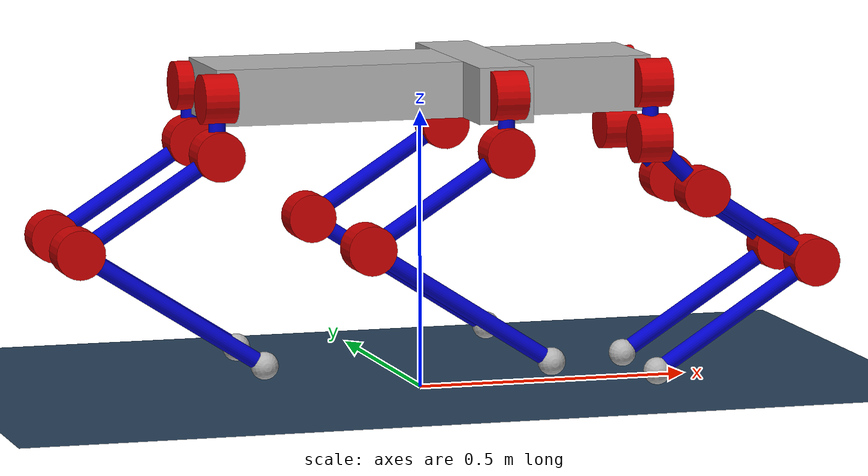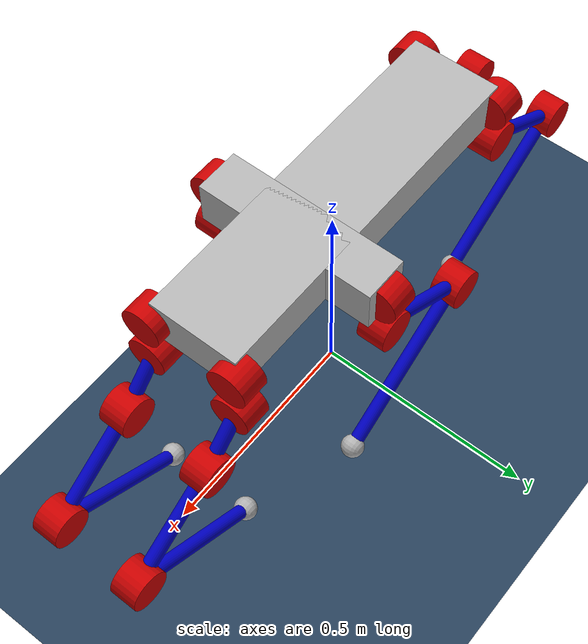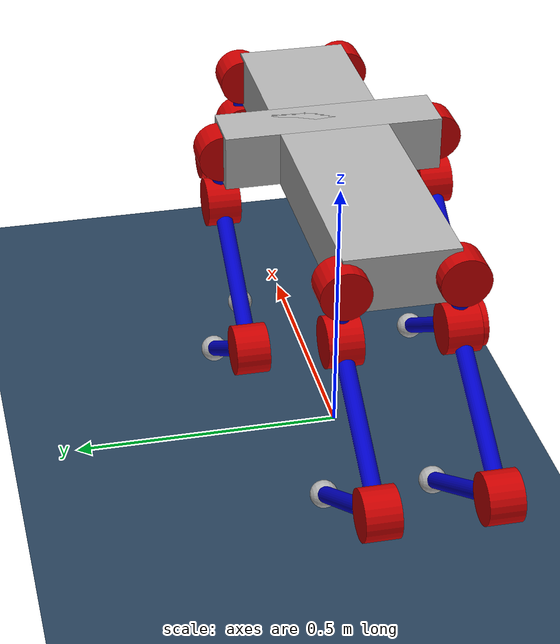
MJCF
<mujoco model="newhex1 scene">
  <include file="newhex1.xml" />
  <default>
    <default class="floor">
      <geom type="plane" size="0 0 0.05" material="groundplane" />
    </default>
  </default>
  <visual>
    <global offwidth="3840" offheight="2160" />
    <rgba haze="0.15 0.25 0.35 1" />
  </visual>
  <asset>
    <texture type="2d" name="groundplane" builtin="checker" mark="edge" rgb1="0.2 0.3 0.4" rgb2="0.1 0.2 0.3" markrgb="0.8 0.8 0.8" width="300" height="300" />
    <material name="groundplane" texture="groundplane" texuniform="true" texrepeat="5 5" reflectance="0.2" />
  </asset>
  <worldbody>
    <light pos="0 0 1.5" dir="0 0 -1" directional="true" />
    <geom name="floor" class="floor" size="0 0 0.05" />
  </worldbody>
  <keyframe>
    <key name="home" qpos="0 0 0.66 1 0 0 0 0 0.17 0.3 0.41 0.06 0.12 -0.46 0.06 0.12 -0.44 -0.05 -0.14 -0.3 -0.46 -0.08 -0.12 0.42 -0.05 -0.12 0.41" ctrl="0 0.17 0.3 0.41 0.06 0.12 -0.46 0.06 0.12 -0.44 -0.05 -0.14 -0.3 -0.46 -0.08 -0.12 0.42 -0.05 -0.12 0.41" />
  </keyframe>
</mujoco>

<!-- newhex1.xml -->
<mujoco model="hexapod_robot_BASIC">
  <default>
    <default class="robot">
      <joint damping="2" armature="0.01" frictionloss="0.2" />
      <default class="visual">
        <geom contype="0" conaffinity="0" group="2" />
      </default>
      <default class="collision">
        <geom contype="0" conaffinity="1" group="3" />
      </default>
    </default>
  </default>
  <compiler angle="radian" meshdir="assets" balanceinertia="true" />
  <worldbody>
    <body name="base_link" childclass="robot" pos="0 0 0.5491">
      <inertial pos="0 0 0" mass="1.32" quat="1 0 0 0" diaginertia="0.0166667 0.0166667 0.0166667" />
      <geom name="base_link_collision_0" type="box" size="0.4 0.1 0.05" class="collision" />
      <geom name="base_link_collision_1" pos="0.1 0 0" type="box" size="0.05 0.2 0.05" class="collision" />
      <geom name="base_link_visual_0" type="box" size="0.4 0.1 0.05" material="grey" class="visual" />
      <geom name="base_link_visual_1" pos="0.1 0 0" type="box" size="0.05 0.2 0.05" material="grey" class="visual" />
      <site name="imu" pos="0 0 0" size="0.01" rgba="1 0 0 1" />
      <body name="LF_link1" pos="0.4 0.1 0" quat="0.7071 0 0.7071 0">
        <inertial pos="0 0 0" quat="1 0 0 0" mass="0.4" diaginertia="0.000968 0.000968 0.000784" />
        <joint name="LF_joint1" type="hinge" range="-6.28 6.28" axis="0 0 1" />
        <geom name="LF_link1_collision" pos="0.05 0 0" quat="0.7071 0 0.7071 0" type="cylinder" size="0.015 0.05" class="collision" />
        <geom name="LF_link1_visual_0" type="cylinder" size="0.044 0.03" material="red" class="visual" />
        <geom name="LF_link1_visual_1" pos="0.05 0 0" quat="0.7071 0 0.7071 0" type="cylinder" size="0.015 0.05" material="blue" class="visual" />
        <body name="LF_link2" pos="0.1 0 0">
          <inertial pos="0 0 0" quat="1 0 0 0" mass="0.441421" diaginertia="0.000968 0.000968 0.000784" />
          <joint name="LF_joint2" type="hinge" range="-6.28 6.28" axis="0 0 1" />
          <geom name="LF_link2_collision" pos="0.05 0 0.05" quat="0.9239 0 0.3827 0" type="cylinder" size="0.015 0.0707105" class="collision" />
          <geom name="LF_link2_visual_0" type="cylinder" size="0.044 0.03" material="red" class="visual" />
          <geom name="LF_link2_visual_1" pos="0.05 0 0.05" quat="0.9239 0 0.3827 0" type="cylinder" size="0.015 0.0707105" material="blue" class="visual" />
          <body name="LF_link3" pos="0.1 0 0.1" quat="0.6205 0.6205 -0.339 0.339">
            <inertial pos="0 0 0" quat="1 0 0 0" mass="0.55" diaginertia="0.000968 0.000968 0.000784" />
            <joint name="LF_joint3" type="hinge" range="-6.28 6.28" axis="0 0 1" />
            <geom name="LF_link3_collision" pos="0.125 0 0" quat="0.7071 0 0.7071 0" type="cylinder" size="0.015 0.125" class="collision" />
            <geom name="LF_link3_visual_0" type="cylinder" size="0.044 0.03" material="red" class="visual" />
            <geom name="LF_link3_visual_1" pos="0.125 0 0" quat="0.7071 0 0.7071 0" type="cylinder" size="0.015 0.125" material="blue" class="visual" />
            <body name="LF_link4" pos="0.25 0 0" quat="0.5403 0 0 -0.8415">
              <inertial pos="0 0 0" quat="1 0 0 0" mass="0.65" diaginertia="0.000968 0.000968 0.000784" />
              <joint name="LF_joint4" type="hinge" range="-6.28 6.28" axis="0 0 1" />
              <geom name="LF_link4_collision" pos="0.175 0 0" quat="0.7071 0 0.7071 0" type="cylinder" size="0.015 0.175" class="collision" />
              <geom name="LF_link4_visual_0" type="cylinder" size="0.044 0.03" material="red" class="visual" />
              <geom name="LF_link4_visual_1" pos="0.175 0 0" quat="0.7071 0 0.7071 0" type="cylinder" size="0.015 0.175" material="blue" class="visual" />
              <body name="LF_foot_link" pos="0.35 0 0">
                <inertial pos="0 0 0" quat="1 0 0 0" mass="0.05" diaginertia="1.25e-05 1.25e-05 1.25e-05" />
                <geom name="LF_foot_link_collision" type="sphere" size="0.025" class="collision" />
                <geom name="LF_foot_link_visual" type="sphere" size="0.025" material="grey" class="visual" />
                <site name="LF_touch_site" size="0.01" rgba="0 0 0 0" />
              </body>
            </body>
          </body>
        </body>
      </body>
      <body name="LM_link1" pos="0.1 0.2 0" quat="0.7071 0 0.7071 0">
        <inertial pos="0 0 0" quat="1 0 0 0" mass="0.4" diaginertia="0.000968 0.000968 0.000784" />
        <joint name="LM_joint1" type="hinge" range="-6.28 6.28" axis="0 0 1" />
        <geom name="LM_link1_collision" pos="0.05 0 0" quat="0.7071 0 0.7071 0" type="cylinder" size="0.015 0.05" class="collision" />
        <geom name="LM_link1_visual_0" type="cylinder" size="0.044 0.03" material="red" class="visual" />
        <geom name="LM_link1_visual_1" pos="0.05 0 0" quat="0.7071 0 0.7071 0" type="cylinder" size="0.015 0.05" material="blue" class="visual" />
        <body name="LM_link2" pos="0.1 0 0" quat="0.6205 0.6205 0.339 -0.339">
          <inertial pos="0 0 0" quat="1 0 0 0" mass="0.6" diaginertia="0.000968 0.000968 0.000784" />
          <joint name="LM_joint2" type="hinge" range="-6.28 6.28" axis="0 0 1" />
          <geom name="LM_link2_collision" pos="0.15 0 0" quat="0.7071 0 0.7071 0" type="cylinder" size="0.015 0.15" class="collision" />
          <geom name="LM_link2_visual_0" type="cylinder" size="0.044 0.03" material="red" class="visual" />
          <geom name="LM_link2_visual_1" pos="0.15 0 0" quat="0.7071 0 0.7071 0" type="cylinder" size="0.015 0.15" material="blue" class="visual" />
          <body name="LM_link3" pos="0.3 0 0" quat="0.5403 0 0 0.8415">
            <inertial pos="0 0 0" quat="1 0 0 0" mass="0.7" diaginertia="0.000968 0.000968 0.000784" />
            <joint name="LM_joint3" type="hinge" range="-6.28 6.28" axis="0 0 1" />
            <geom name="LM_link3_collision" pos="0.2 0 0" quat="0.7071 0 0.7071 0" type="cylinder" size="0.015 0.2" class="collision" />
            <geom name="LM_link3_visual_0" type="cylinder" size="0.044 0.03" material="red" class="visual" />
            <geom name="LM_link3_visual_1" pos="0.2 0 0" quat="0.7071 0 0.7071 0" type="cylinder" size="0.015 0.2" material="blue" class="visual" />
            <body name="LM_foot_link" pos="0.4 0 0">
              <inertial pos="0 0 0" quat="1 0 0 0" mass="0.05" diaginertia="1.25e-05 1.25e-05 1.25e-05" />
              <geom name="LM_foot_link_collision" type="sphere" size="0.025" class="collision" />
              <geom name="LM_foot_link_visual" type="sphere" size="0.025" material="grey" class="visual" />
              <site name="LM_touch_site" size="0.01" rgba="0 0 0 0" />
            </body>
          </body>
        </body>
      </body>
      <body name="LB_link1" pos="-0.4 0.1 0" quat="0.7071 0 0.7071 0">
        <inertial pos="0 0 0" quat="1 0 0 0" mass="0.4" diaginertia="0.000968 0.000968 0.000784" />
        <joint name="LB_joint1" type="hinge" range="-6.28 6.28" axis="0 0 1" />
        <geom name="LB_link1_collision" pos="0.05 0 0" quat="0.7071 0 0.7071 0" type="cylinder" size="0.015 0.05" class="collision" />
        <geom name="LB_link1_visual_0" type="cylinder" size="0.044 0.03" material="red" class="visual" />
        <geom name="LB_link1_visual_1" pos="0.05 0 0" quat="0.7071 0 0.7071 0" type="cylinder" size="0.015 0.05" material="blue" class="visual" />
        <body name="LB_link2" pos="0.1 0 0" quat="0.6205 0.6205 0.339 -0.339">
          <inertial pos="0 0 0" quat="1 0 0 0" mass="0.6" diaginertia="0.000968 0.000968 0.000784" />
          <joint name="LB_joint2" type="hinge" range="-6.28 6.28" axis="0 0 1" />
          <geom name="LB_link2_collision" pos="0.15 0 0" quat="0.7071 0 0.7071 0" type="cylinder" size="0.015 0.15" class="collision" />
          <geom name="LB_link2_visual_0" type="cylinder" size="0.044 0.03" material="red" class="visual" />
          <geom name="LB_link2_visual_1" pos="0.15 0 0" quat="0.7071 0 0.7071 0" type="cylinder" size="0.015 0.15" material="blue" class="visual" />
          <body name="LB_link3" pos="0.3 0 0" quat="0.5403 0 0 0.8415">
            <inertial pos="0 0 0" quat="1 0 0 0" mass="0.7" diaginertia="0.000968 0.000968 0.000784" />
            <joint name="LB_joint3" type="hinge" range="-6.28 6.28" axis="0 0 1" />
            <geom name="LB_link3_collision" pos="0.2 0 0" quat="0.7071 0 0.7071 0" type="cylinder" size="0.015 0.2" class="collision" />
            <geom name="LB_link3_visual_0" type="cylinder" size="0.044 0.03" material="red" class="visual" />
            <geom name="LB_link3_visual_1" pos="0.2 0 0" quat="0.7071 0 0.7071 0" type="cylinder" size="0.015 0.2" material="blue" class="visual" />
            <body name="LB_foot_link" pos="0.4 0 0">
              <inertial pos="0 0 0" quat="1 0 0 0" mass="0.05" diaginertia="1.25e-05 1.25e-05 1.25e-05" />
              <geom name="LB_foot_link_collision" type="sphere" size="0.025" class="collision" />
              <geom name="LB_foot_link_visual" type="sphere" size="0.025" material="grey" class="visual" />
              <site name="LB_touch_site" size="0.01" rgba="0 0 0 0" />
            </body>
          </body>
        </body>
      </body>
      <body name="RF_link1" pos="0.4 -0.1 0" quat="0.7071 0 0.7071 0">
        <inertial pos="0 0 0" quat="1 0 0 0" mass="0.4" diaginertia="0.000968 0.000968 0.000784" />
        <joint name="RF_joint1" type="hinge" range="-6.28 6.28" axis="0 0 1" />
        <geom name="RF_link1_collision" pos="0.05 -0 0" quat="0.7071 0 0.7071 0" type="cylinder" size="0.015 0.05" class="collision" />
        <geom name="RF_link1_visual_0" type="cylinder" size="0.044 0.03" material="red" class="visual" />
        <geom name="RF_link1_visual_1" pos="0.05 -0 0" quat="0.7071 0 0.7071 0" type="cylinder" size="0.015 0.05" material="blue" class="visual" />
        <body name="RF_link2" pos="0.1 -0 0">
          <inertial pos="0 0 0" quat="1 0 0 0" mass="0.441421" diaginertia="0.000968 0.000968 0.000784" />
          <joint name="RF_joint2" type="hinge" range="-6.28 6.28" axis="0 0 1" />
          <geom name="RF_link2_collision" pos="0.05 -0 0.05" quat="0.9239 0 0.3827 0" type="cylinder" size="0.015 0.0707105" class="collision" />
          <geom name="RF_link2_visual_0" type="cylinder" size="0.044 0.03" material="red" class="visual" />
          <geom name="RF_link2_visual_1" pos="0.05 -0 0.05" quat="0.9239 0 0.3827 0" type="cylinder" size="0.015 0.0707105" material="blue" class="visual" />
          <body name="RF_link3" pos="0.1 -0 0.1" quat="0.6205 -0.6205 -0.339 -0.339">
            <inertial pos="0 0 0" quat="1 0 0 0" mass="0.55" diaginertia="0.000968 0.000968 0.000784" />
            <joint name="RF_joint3" type="hinge" range="-6.28 6.28" axis="0 0 1" />
            <geom name="RF_link3_collision" pos="0.125 -0 0" quat="0.7071 0 0.7071 0" type="cylinder" size="0.015 0.125" class="collision" />
            <geom name="RF_link3_visual_0" type="cylinder" size="0.044 0.03" material="red" class="visual" />
            <geom name="RF_link3_visual_1" pos="0.125 -0 0" quat="0.7071 0 0.7071 0" type="cylinder" size="0.015 0.125" material="blue" class="visual" />
            <body name="RF_link4" pos="0.25 -0 0" quat="0.5403 0 0 0.8415">
              <inertial pos="0 0 0" quat="1 0 0 0" mass="0.65" diaginertia="0.000968 0.000968 0.000784" />
              <joint name="RF_joint4" type="hinge" range="-6.28 6.28" axis="0 0 1" />
              <geom name="RF_link4_collision" pos="0.175 -0 0" quat="0.7071 0 0.7071 0" type="cylinder" size="0.015 0.175" class="collision" />
              <geom name="RF_link4_visual_0" type="cylinder" size="0.044 0.03" material="red" class="visual" />
              <geom name="RF_link4_visual_1" pos="0.175 -0 0" quat="0.7071 0 0.7071 0" type="cylinder" size="0.015 0.175" material="blue" class="visual" />
              <body name="RF_foot_link" pos="0.35 -0 0">
                <inertial pos="0 0 0" quat="1 0 0 0" mass="0.05" diaginertia="1.25e-05 1.25e-05 1.25e-05" />
                <geom name="RF_foot_link_collision" type="sphere" size="0.025" class="collision" />
                <geom name="RF_foot_link_visual" type="sphere" size="0.025" material="grey" class="visual" />
                <site name="RF_touch_site" size="0.01" rgba="0 0 0 0" />
              </body>
            </body>
          </body>
        </body>
      </body>
      <body name="RM_link1" pos="0.1 -0.2 0" quat="0.7071 0 0.7071 0">
        <inertial pos="0 0 0" quat="1 0 0 0" mass="0.4" diaginertia="0.000968 0.000968 0.000784" />
        <joint name="RM_joint1" type="hinge" range="-6.28 6.28" axis="0 0 1" />
        <geom name="RM_link1_collision" pos="0.05 -0 0" quat="0.7071 0 0.7071 0" type="cylinder" size="0.015 0.05" class="collision" />
        <geom name="RM_link1_visual_0" type="cylinder" size="0.044 0.03" material="red" class="visual" />
        <geom name="RM_link1_visual_1" pos="0.05 -0 0" quat="0.7071 0 0.7071 0" type="cylinder" size="0.015 0.05" material="blue" class="visual" />
        <body name="RM_link2" pos="0.1 -0 0" quat="0.6205 -0.6205 0.339 0.339">
          <inertial pos="0 0 0" quat="1 0 0 0" mass="0.6" diaginertia="0.000968 0.000968 0.000784" />
          <joint name="RM_joint2" type="hinge" range="-6.28 6.28" axis="0 0 1" />
          <geom name="RM_link2_collision" pos="0.15 -0 0" quat="0.7071 0 0.7071 0" type="cylinder" size="0.015 0.15" class="collision" />
          <geom name="RM_link2_visual_0" type="cylinder" size="0.044 0.03" material="red" class="visual" />
          <geom name="RM_link2_visual_1" pos="0.15 -0 0" quat="0.7071 0 0.7071 0" type="cylinder" size="0.015 0.15" material="blue" class="visual" />
          <body name="RM_link3" pos="0.3 -0 0" quat="0.5403 0 0 -0.8415">
            <inertial pos="0 0 0" quat="1 0 0 0" mass="0.7" diaginertia="0.000968 0.000968 0.000784" />
            <joint name="RM_joint3" type="hinge" range="-6.28 6.28" axis="0 0 1" />
            <geom name="RM_link3_collision" pos="0.2 -0 0" quat="0.7071 0 0.7071 0" type="cylinder" size="0.015 0.2" class="collision" />
            <geom name="RM_link3_visual_0" type="cylinder" size="0.044 0.03" material="red" class="visual" />
            <geom name="RM_link3_visual_1" pos="0.2 -0 0" quat="0.7071 0 0.7071 0" type="cylinder" size="0.015 0.2" material="blue" class="visual" />
            <body name="RM_foot_link" pos="0.4 -0 0">
              <inertial pos="0 0 0" quat="1 0 0 0" mass="0.05" diaginertia="1.25e-05 1.25e-05 1.25e-05" />
              <geom name="RM_foot_link_collision" type="sphere" size="0.025" class="collision" />
              <geom name="RM_foot_link_visual" type="sphere" size="0.025" material="grey" class="visual" />
              <site name="RM_touch_site" size="0.01" rgba="0 0 0 0" />
            </body>
          </body>
        </body>
      </body>
      <body name="RB_link1" pos="-0.4 -0.1 0" quat="0.7071 0 0.7071 0">
        <inertial pos="0 0 0" quat="1 0 0 0" mass="0.4" diaginertia="0.000968 0.000968 0.000784" />
        <joint name="RB_joint1" type="hinge" range="-6.28 6.28" axis="0 0 1" />
        <geom name="RB_link1_collision" pos="0.05 -0 0" quat="0.7071 0 0.7071 0" type="cylinder" size="0.015 0.05" class="collision" />
        <geom name="RB_link1_visual_0" type="cylinder" size="0.044 0.03" material="red" class="visual" />
        <geom name="RB_link1_visual_1" pos="0.05 -0 0" quat="0.7071 0 0.7071 0" type="cylinder" size="0.015 0.05" material="blue" class="visual" />
        <body name="RB_link2" pos="0.1 -0 0" quat="0.6205 -0.6205 0.339 0.339">
          <inertial pos="0 0 0" quat="1 0 0 0" mass="0.6" diaginertia="0.000968 0.000968 0.000784" />
          <joint name="RB_joint2" type="hinge" range="-6.28 6.28" axis="0 0 1" />
          <geom name="RB_link2_collision" pos="0.15 -0 0" quat="0.7071 0 0.7071 0" type="cylinder" size="0.015 0.15" class="collision" />
          <geom name="RB_link2_visual_0" type="cylinder" size="0.044 0.03" material="red" class="visual" />
          <geom name="RB_link2_visual_1" pos="0.15 -0 0" quat="0.7071 0 0.7071 0" type="cylinder" size="0.015 0.15" material="blue" class="visual" />
          <body name="RB_link3" pos="0.3 -0 0" quat="0.5403 0 0 -0.8415">
            <inertial pos="0 0 0" quat="1 0 0 0" mass="0.7" diaginertia="0.000968 0.000968 0.000784" />
            <joint name="RB_joint3" type="hinge" range="-6.28 6.28" axis="0 0 1" />
            <geom name="RB_link3_collision" pos="0.2 -0 0" quat="0.7071 0 0.7071 0" type="cylinder" size="0.015 0.2" class="collision" />
            <geom name="RB_link3_visual_0" type="cylinder" size="0.044 0.03" material="red" class="visual" />
            <geom name="RB_link3_visual_1" pos="0.2 -0 0" quat="0.7071 0 0.7071 0" type="cylinder" size="0.015 0.2" material="blue" class="visual" />
            <body name="RB_foot_link" pos="0.4 -0 0">
              <inertial pos="0 0 0" quat="1 0 0 0" mass="0.05" diaginertia="1.25e-05 1.25e-05 1.25e-05" />
              <geom name="RB_foot_link_collision" type="sphere" size="0.025" class="collision" />
              <geom name="RB_foot_link_visual" type="sphere" size="0.025" material="grey" class="visual" />
              <site name="RB_touch_site" size="0.01" rgba="0 0 0 0" />
            </body>
          </body>
        </body>
      </body>
      <freejoint name="floating_base" />
    </body>
  </worldbody>
  <asset>
    <material name="blue" rgba="0 0 0.8 1" />
    <material name="red" rgba="0.8 0 0 1" />
    <material name="grey" rgba="0.7 0.7 0.7 1" />
  </asset>
  <actuator>
    <position name="LF_joint1" joint="LF_joint1" />
    <position name="LF_joint2" joint="LF_joint2" />
    <position name="LF_joint3" joint="LF_joint3" />
    <position name="LF_joint4" joint="LF_joint4" />
    <position name="LM_joint1" joint="LM_joint1" />
    <position name="LM_joint2" joint="LM_joint2" />
    <position name="LM_joint3" joint="LM_joint3" />
    <position name="LB_joint1" joint="LB_joint1" />
    <position name="LB_joint2" joint="LB_joint2" />
    <position name="LB_joint3" joint="LB_joint3" />
    <position name="RF_joint1" joint="RF_joint1" />
    <position name="RF_joint2" joint="RF_joint2" />
    <position name="RF_joint3" joint="RF_joint3" />
    <position name="RF_joint4" joint="RF_joint4" />
    <position name="RM_joint1" joint="RM_joint1" />
    <position name="RM_joint2" joint="RM_joint2" />
    <position name="RM_joint3" joint="RM_joint3" />
    <position name="RB_joint1" joint="RB_joint1" />
    <position name="RB_joint2" joint="RB_joint2" />
    <position name="RB_joint3" joint="RB_joint3" />
  </actuator>
  <sensor>
    <gyro site="imu" name="gyro" />
    <velocimeter site="imu" name="local_linvel" />
    <framepos objtype="site" objname="imu" name="position" />
    <framezaxis objtype="site" objname="imu" name="upvector" />
    <framelinvel objtype="site" objname="imu" name="global_linvel" />
    <frameangvel objtype="site" objname="imu" name="global_angvel" />
    <jointpos name="RF_1_pos" joint="RF_joint1" />
    <jointvel name="RF_1_vel" joint="RF_joint1" />
    <jointpos name="RF_2_pos" joint="RF_joint2" />
    <jointvel name="RF_2_vel" joint="RF_joint2" />
    <jointpos name="RF_3_pos" joint="RF_joint3" />
    <jointvel name="RF_3_vel" joint="RF_joint3" />
    <jointpos name="RF_4_pos" joint="RF_joint4" />
    <jointvel name="RF_4_vel" joint="RF_joint4" />
    <jointpos name="RM_1_pos" joint="RM_joint1" />
    <jointvel name="RM_1_vel" joint="RM_joint1" />
    <jointpos name="RM_2_pos" joint="RM_joint2" />
    <jointvel name="RM_2_vel" joint="RM_joint2" />
    <jointpos name="RM_3_pos" joint="RM_joint3" />
    <jointvel name="RM_3_vel" joint="RM_joint3" />
    <jointpos name="RB_1_pos" joint="RB_joint1" />
    <jointvel name="RB_1_vel" joint="RB_joint1" />
    <jointpos name="RB_2_pos" joint="RB_joint2" />
    <jointvel name="RB_2_vel" joint="RB_joint2" />
    <jointpos name="RB_3_pos" joint="RB_joint3" />
    <jointvel name="RB_3_vel" joint="RB_joint3" />
    <jointpos name="LF_1_pos" joint="LF_joint1" />
    <jointvel name="LF_1_vel" joint="LF_joint1" />
    <jointpos name="LF_2_pos" joint="LF_joint2" />
    <jointvel name="LF_2_vel" joint="LF_joint2" />
    <jointpos name="LF_3_pos" joint="LF_joint3" />
    <jointvel name="LF_3_vel" joint="LF_joint3" />
    <jointpos name="LF_4_pos" joint="LF_joint4" />
    <jointvel name="LF_4_vel" joint="LF_joint4" />
    <jointpos name="LM_1_pos" joint="LM_joint1" />
    <jointvel name="LM_1_vel" joint="LM_joint1" />
    <jointpos name="LM_2_pos" joint="LM_joint2" />
    <jointvel name="LM_2_vel" joint="LM_joint2" />
    <jointpos name="LM_3_pos" joint="LM_joint3" />
    <jointvel name="LM_3_vel" joint="LM_joint3" />
    <jointpos name="LB_1_pos" joint="LB_joint1" />
    <jointvel name="LB_1_vel" joint="LB_joint1" />
    <jointpos name="LB_2_pos" joint="LB_joint2" />
    <jointvel name="LB_2_vel" joint="LB_joint2" />
    <jointpos name="LB_3_pos" joint="LB_joint3" />
    <jointvel name="LB_3_vel" joint="LB_joint3" />
    <touch name="RF_foot_contact" site="RF_touch_site" />
    <touch name="RM_foot_contact" site="RM_touch_site" />
    <touch name="RB_foot_contact" site="RB_touch_site" />
    <touch name="LF_foot_contact" site="LF_touch_site" />
    <touch name="LM_foot_contact" site="LM_touch_site" />
    <touch name="LB_foot_contact" site="LB_touch_site" />
    <framepos objtype="site" objname="RF_touch_site" name="RF_pos" />
    <framepos objtype="site" objname="RM_touch_site" name="RM_pos" />
    <framepos objtype="site" objname="RB_touch_site" name="RB_pos" />
    <framepos objtype="site" objname="LF_touch_site" name="LF_pos" />
    <framepos objtype="site" objname="LM_touch_site" name="LM_pos" />
    <framepos objtype="site" objname="LB_touch_site" name="LB_pos" />
    <framelinvel objtype="site" objname="RF_touch_site" name="RF_vel" />
    <framelinvel objtype="site" objname="RM_touch_site" name="RM_vel" />
    <framelinvel objtype="site" objname="RB_touch_site" name="RB_vel" />
    <framelinvel objtype="site" objname="LF_touch_site" name="LF_vel" />
    <framelinvel objtype="site" objname="LM_touch_site" name="LM_vel" />
    <framelinvel objtype="site" objname="LB_touch_site" name="LB_vel" />
  </sensor>
</mujoco>
